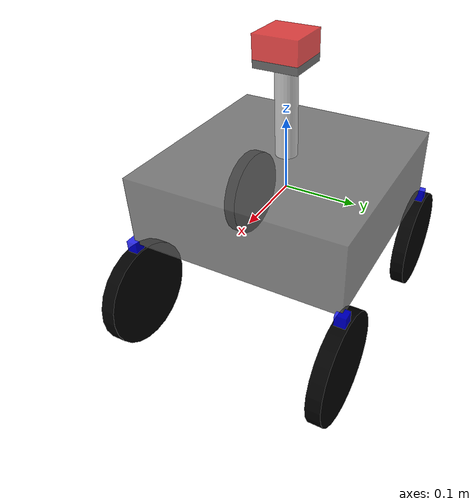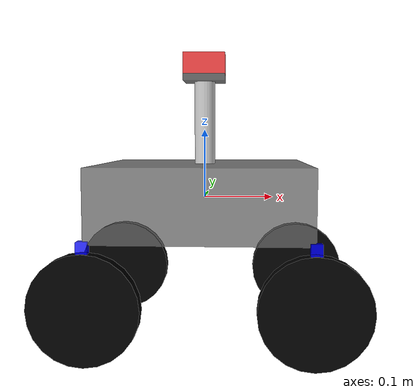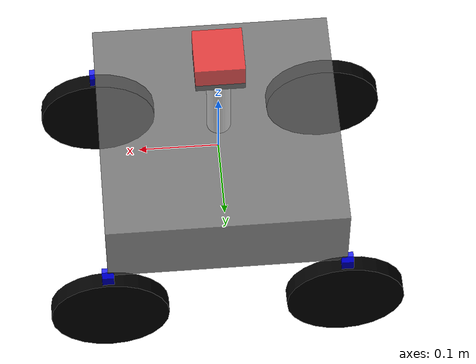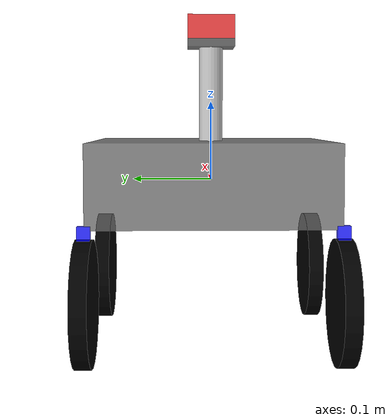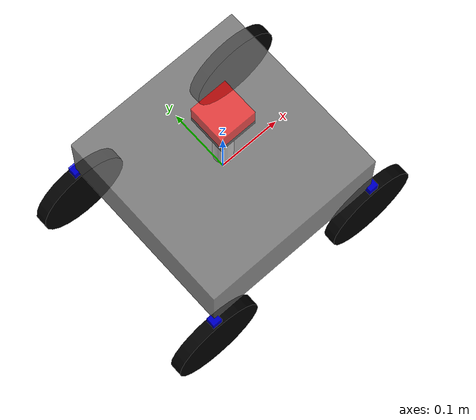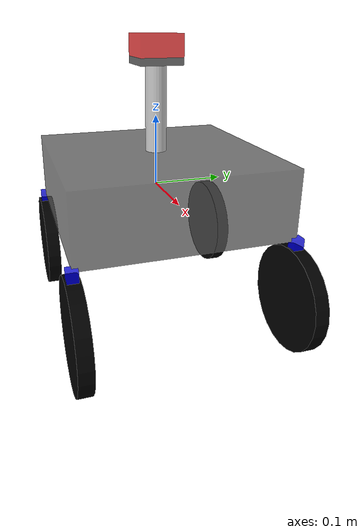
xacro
<?xml version="1.0"?>
<robot xmlns:xacro="http://www.ros.org/wiki/xacro" name="four_wheel_swerve_chassis">
<xacro:include filename="$(find swerve_robot)/urdf/four_wheel_swerve_laser.xacro"/>

<!-- 参数：单位 cm，代码内部转为米 -->
<xacro:property name="chassis_length_cm" value="30.0"/>
<xacro:property name="chassis_width_cm" value="30.0"/>
<xacro:property name="chassis_thickness_cm" value="10.0"/>
<xacro:property name="wheel_radius_cm" value="7.5"/>
<xacro:property name="wheel_width_cm" value="2.0"/>
<!-- 转为URDF标准 m -->
<xacro:property name="chassis_len" value="${chassis_length_cm / 100.0}"/>
<xacro:property name="chassis_wid" value="${chassis_width_cm / 100.0}"/>
<xacro:property name="chassis_thick" value="${chassis_thickness_cm / 100.0}"/>
<xacro:property name="wheel_r" value="${wheel_radius_cm / 100.0}"/>
<xacro:property name="wheel_w" value="${wheel_width_cm / 100.0}"/>
<!-- 转向关节限位 ±90° 弧度 -->
<xacro:property name="steer_min" value="-3.1416"/>
<xacro:property name="steer_max" value="3.1416"/>
<!-- 底盘底面到转向关节中心z距离，留间隙防止碰撞 -->
<xacro:property name="z_gap" value="0.01"/>
<xacro:property name="steering_z_pos" value="${-chassis_thick/2 - z_gap}"/>

<!-- ===================== 宏：转向关节传动（Position） ===================== -->
<xacro:macro name="steer_transmission" params="joint_name">
  <transmission name="${joint_name}_trans">
    <type>transmission_interface/SimpleTransmission</type>
    <joint name="${joint_name}">
      <hardwareInterface>hardware_interface/PositionJointInterface</hardwareInterface>
    </joint>
    <actuator name="${joint_name}_motor">
      <hardwareInterface>hardware_interface/PositionJointInterface</hardwareInterface>
      <mechanicalReduction>1</mechanicalReduction>
    </actuator>
  </transmission>
</xacro:macro>

<!-- ===================== 宏：驱动关节传动（Velocity） ===================== -->
<xacro:macro name="drive_transmission" params="joint_name">
  <transmission name="${joint_name}_trans">
    <type>transmission_interface/SimpleTransmission</type>
    <joint name="${joint_name}">
      <hardwareInterface>hardware_interface/VelocityJointInterface</hardwareInterface>
    </joint>
    <actuator name="${joint_name}_motor">
      <hardwareInterface>hardware_interface/VelocityJointInterface</hardwareInterface>
      <mechanicalReduction>1</mechanicalReduction>
    </actuator>
  </transmission>
</xacro:macro>

<!-- 单舵轮宏 swerve模块 -->
<xacro:macro name="swerve_module" params="prefix x_pos y_pos">
<!-- 转向支架连杆 -->
<link name="${prefix}_steering_link">
<visual>
<origin xyz="0 0 0" rpy="0 0 0"/>
<geometry>
<box size="0.015 0.015 0.03"/>
</geometry>
<material name="blue">
<color rgba="0 0 1 0.8"/>
</material>
</visual>
<inertial>
<origin xyz="0 0 0"/>
<mass value="0.05"/>
<inertia ixx="1e-5" ixy="0" ixz="0" iyy="1e-5" iyz="0" izz="1e-5"/>
</inertial>
</link>
<!-- 转向关节：revolute，带±90°限位，控制轮子摆角 -->
<joint name="${prefix}_steering_joint" type="revolute">
<parent link="base_link"/>
<child link="${prefix}_steering_link"/>
<origin xyz="${x_pos} ${y_pos} ${steering_z_pos}" rpy="0 0 0"/>
<axis xyz="0 0 1"/>
<limit lower="${steer_min}" upper="${steer_max}" effort="100" velocity="3.14"/>
</joint>
<!-- 车轮连杆：cylinder默认沿Z，rpy绕X转90°，圆柱轴线变为Y轴，轮子正常立起 -->
<link name="${prefix}_wheel_link">
<visual>
<origin xyz="0 0 0" rpy="${pi/2} 0 0"/>
<geometry>
<cylinder radius="${wheel_r}" length="${wheel_w}"/>
</geometry>
<material name="black">
<color rgba="0 0 0 0.9"/>
</material>
</visual>
<collision>
<origin xyz="0 0 0" rpy="${pi/2} 0 0"/>
<geometry>
<cylinder radius="${wheel_r}" length="${wheel_w}"/>
</geometry>
</collision>
<inertial>
<origin xyz="0 0 0"/>
<mass value="0.1"/>
<inertia ixx="1e-4" ixy="0" ixz="0" iyy="1e-4" iyz="0" izz="1e-4"/>
</inertial>
</link>
<!-- 驱动关节 continuous：✅ 支持无限自转，无角度限制，轮子滚动 -->
<joint name="${prefix}_drive_joint" type="continuous">
<parent link="${prefix}_steering_link"/>
<child link="${prefix}_wheel_link"/>
<origin xyz="0 0 ${-wheel_r}" rpy="0 0 0"/>
<axis xyz="0 1 0"/>
</joint>
</xacro:macro>

<!-- 底盘本体 base_link -->
<link name="base_link">
<visual>
<origin xyz="0 0 0" rpy="0 0 0"/>
<geometry>
<box size="${chassis_len} ${chassis_wid} ${chassis_thick}"/>
</geometry>
<material name="gray">
<color rgba="0.4 0.4 0.4 0.8"/>
</material>
</visual>
<collision>
<origin xyz="0 0 0" rpy="0 0 0"/>
<geometry>
<box size="${chassis_len} ${chassis_wid} ${chassis_thick}"/>
</geometry>
</collision>
<inertial>
<origin xyz="0 0 0"/>
<mass value="2.0"/>
<inertia ixx="0.01" ixy="0" ixz="0" iyy="0.02" iyz="0" izz="0.015"/>
</inertial>
</link>

<!-- 实例化四个舵轮 -->
<xacro:swerve_module prefix="front_left" x_pos="${chassis_len/2}" y_pos="${chassis_wid/2}"/>
<xacro:swerve_module prefix="front_right" x_pos="${chassis_len/2}" y_pos="${-chassis_wid/2}"/>
<xacro:swerve_module prefix="rear_left" x_pos="${-chassis_len/2}" y_pos="${chassis_wid/2}"/>
<xacro:swerve_module prefix="rear_right" x_pos="${-chassis_len/2}" y_pos="${-chassis_wid/2}"/>

<!-- ===================== 添加8组传动 ===================== -->
<xacro:steer_transmission joint_name="front_left_steering_joint"/>
<xacro:steer_transmission joint_name="front_right_steering_joint"/>
<xacro:steer_transmission joint_name="rear_left_steering_joint"/>
<xacro:steer_transmission joint_name="rear_right_steering_joint"/>

<xacro:drive_transmission joint_name="front_left_drive_joint"/>
<xacro:drive_transmission joint_name="front_right_drive_joint"/>
<xacro:drive_transmission joint_name="rear_left_drive_joint"/>
<xacro:drive_transmission joint_name="rear_right_drive_joint"/>

<!-- Gazebo ros_control 插件（ROS1） -->
<gazebo>
<plugin name="gazebo_ros_control" filename="libgazebo_ros_control.so">
<robotNamespace>/</robotNamespace>
</plugin>
</gazebo>

</robot>

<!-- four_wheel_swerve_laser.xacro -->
<robot xmlns:xacro="http://www.ros.org/wiki/xacro">
  <!-- ========== 激光雷达支架参数 ========== -->
  <xacro:property name="post_height_cm" value="12.0"/>    <!-- 立柱高度 -->
  <xacro:property name="post_radius_cm" value="1.5"/>     <!-- 立柱圆柱半径 -->
  <xacro:property name="laser_base_thick_cm" value="1.0"/><!-- 雷达底座厚度 -->
  <xacro:property name="laser_length_cm" value="6.0"/>    <!-- 单线雷达本体长度 -->
  <xacro:property name="laser_width_cm" value="6.0"/>     <!-- 雷达宽度 -->
  <xacro:property name="laser_height_cm" value="3.0"/>    <!-- 雷达高度 -->

  <!-- 单位转换 cm -> m -->
  <xacro:property name="post_h" value="${post_height_cm / 100.0}"/>
  <xacro:property name="post_r" value="${post_radius_cm / 100.0}"/>
  <xacro:property name="laser_base_t" value="${laser_base_thick_cm / 100.0}"/>
  <xacro:property name="laser_l" value="${laser_length_cm / 100.0}"/>
  <xacro:property name="laser_w" value="${laser_width_cm / 100.0}"/>
  <xacro:property name="laser_h" value="${laser_height_cm / 100.0}"/>

  <!-- 雷达安装高度：底盘顶面中心向上 -->
  <xacro:property name="chassis_top_z" value="${0.03}"/> <!-- 你底盘厚度10cm，半厚0.05m，这里对应base_link顶面z=0.05，注意！下面会修正 -->

  <!-- ========== 雷达立柱支架 link ========== -->
  <link name="laser_post_link">
    <visual>
      <origin xyz="0 0 ${post_h/2}" rpy="0 0 0"/>
      <geometry>
        <cylinder radius="${post_r}" length="${post_h}"/>
      </geometry>
      <material name="silver">
        <color rgba="0.7 0.7 0.7 0.8"/>
      </material>
    </visual>
    <collision>
      <origin xyz="0 0 ${post_h/2}" rpy="0 0 0"/>
      <geometry>
        <cylinder radius="${post_r}" length="${post_h}"/>
      </geometry>
    </collision>
    <inertial>
      <origin xyz="0 0 ${post_h/2}"/>
      <mass value="0.08"/>
      <inertia ixx="1e-5" ixy="0" ixz="0" iyy="1e-5" iyz="0" izz="1e-5"/>
    </inertial>
  </link>

  <!-- 固定关节：立柱固定在base_link顶面中心 -->
  <joint name="laser_post_joint" type="fixed">
    <parent link="base_link"/>
    <child link="laser_post_link"/>
    <origin xyz="0 0 ${0.05}" rpy="0 0 0"/> <!-- chassis_thick=0.1m，半厚0.05m，底盘顶面z=0.05 -->
  </joint>

  <!-- ========== 雷达底座 link ========== -->
  <link name="laser_base_link">
    <visual>
      <origin xyz="0 0 ${laser_base_t/2}" rpy="0 0 0"/>
      <geometry>
        <box size="${laser_w} ${laser_w} ${laser_base_t}"/>
      </geometry>
      <material name="dark_gray">
        <color rgba="0.25 0.25 0.25 0.8"/>
      </material>
    </visual>
    <collision>
      <origin xyz="0 0 ${laser_base_t/2}" rpy="0 0 0"/>
      <geometry>
        <box size="${laser_w} ${laser_w} ${laser_base_t}"/>
      </geometry>
    </collision>
    <inertial>
      <origin xyz="0 0 ${laser_base_t/2}"/>
      <mass value="0.05"/>
      <inertia ixx="1e-6" ixy="0" ixz="0" iyy="1e-6" iyz="0" izz="1e-6"/>
    </inertial>
  </link>

  <!-- 底座固定在立柱顶端 -->
  <joint name="laser_base_joint" type="fixed">
    <parent link="laser_post_link"/>
    <child link="laser_base_link"/>
    <origin xyz="0 0 ${post_h}" rpy="0 0 0"/>
  </joint>

  <!-- ========== 单线激光雷达本体 link ========== -->
  <link name="laser_link">
    <visual>
      <origin xyz="0 0 ${laser_h/2}" rpy="0 0 0"/>
      <geometry>
        <box size="${laser_l} ${laser_w} ${laser_h}"/>
      </geometry>
      <material name="red">
        <color rgba="0.9 0.1 0.1 0.8"/>
      </material>
    </visual>
    <collision>
      <origin xyz="0 0 ${laser_h/2}" rpy="0 0 0"/>
      <geometry>
        <box size="${laser_l} ${laser_w} ${laser_h}"/>
      </geometry>
    </collision>
    <inertial>
      <origin xyz="0 0 ${laser_h/2}"/>
      <mass value="0.12"/>
      <inertia ixx="1e-5" ixy="0" ixz="0" iyy="1e-5" iyz="0" izz="1e-5"/>
    </inertial>
  </link>

  <!-- 雷达固定到底座上方 -->
  <joint name="laser_joint" type="fixed">
    <parent link="laser_base_link"/>
    <child link="laser_link"/>
    <origin xyz="0 0 ${laser_base_t}" rpy="0 0 0"/>
  </joint>

  <!-- ========== Gazebo ROS1 单线激光雷达插件 ========== -->
  <gazebo reference="laser_link">
    <sensor type="ray" name="rplidar">
      <pose>0 0 0 0 0 0</pose>
      <visualize>true</visualize>
      <update_rate>20</update_rate>
      <ray>
        <scan>
          <horizontal>
            <samples>720</samples>
            <resolution>1</resolution>
            <min_angle>-3.14159</min_angle>
            <max_angle>3.14159</max_angle>
          </horizontal>
        </scan>
        <range>
          <min>0.1</min>
          <max>10.0</max>
          <resolution>0.01</resolution>
        </range>
      </ray>
      <plugin name="gazebo_ros_rplidar" filename="libgazebo_ros_laser.so">
        <topicName>/scan</topicName>
        <frameName>laser_link</frameName>
      </plugin>
    </sensor>
  </gazebo>

</robot>
